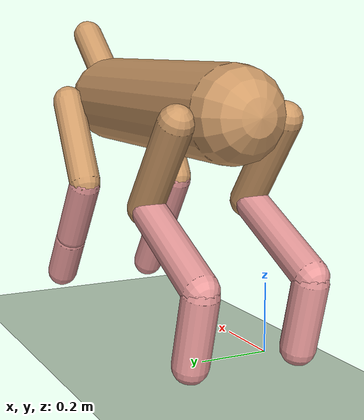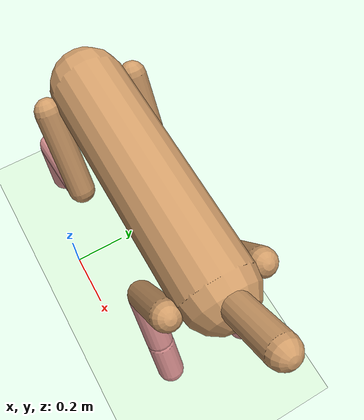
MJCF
<mujoco model="quadrupedrobot">
  <!-- coordinate="local" settotalmass="14" coordinate="local" -->
  <compiler angle="radian"  inertiafromgeom="true"  />
  <default>
    <joint limited='true' damping='1' armature='0'/>
    <geom contype='1' conaffinity='1' condim='1' rgba='0.8 0.6 .4 1'
          margin="0.001" solref=".02 1" solimp=".8 .8 .01" material="geom"/>
    <motor ctrllimited="true" ctrlrange="-1 1"/>
  </default>
  <size nstack="300000" nuser_geom="1"/>
  <option gravity="0 0 -9.81" timestep="0.01"
          tolerance="1e-10" solver="Newton" jacobian="dense" cone="elliptic"/>
  <visual>
      <map fogstart="3" fogend="5" force="0.1" znear="0.5"/>
      <quality shadowsize="2048" offsamples="8"/>
      <global offwidth="800" offheight="800"/>
  </visual>
  <asset>
    <texture builtin="gradient" height="100" rgb1="1 1 1" rgb2="0 0 0" type="skybox" width="100"/>
    <texture builtin="flat" height="1278" mark="cross" markrgb="1 1 1" name="texgeom" random="0.01"
              rgb1="0.8 0.6 0.4" rgb2="0.8 0.6 0.4" type="cube" width="127"/>
    <texture builtin="checker" height="100" name="texplane" rgb1=".2 .3 .4" rgb2=".1 0.15 0.2" type="2d" width="100"/>
    <material name="MatPlane" reflectance="0.5" shininess="1" specular="1" texrepeat="60 60" texture="texplane"/>
    <material name="geom" texture="texgeom" texuniform="true"/>
  </asset>
  <worldbody>
    <light cutoff="100" diffuse="1 1 1" dir="-0 0 -1.3" directional="true" exponent="1" pos="0 0 1.3" specular=".1 .1 .1"/>
    <geom conaffinity="1" condim="3" material="MatPlane" name="floor" pos="0 0 0" rgba="0.8 0.9 0.8 1" size="40 40 40" type="plane"/>
    <body name="torso" pos="0 0 .7">
      <camera name="track" mode="trackcom" pos="0 -5 2" xyaxes="1 0 0 0 0.25 1"/>
      <freejoint name="root"/>
      <geom fromto="-.25 .25 0 .5 .25 0" name="torso" size="0.125 " type="capsule"/>
      <geom axisangle="0 1 0 .87" name="head" pos=".6 .25 .1" size="0.046 .15" type="capsule"/>

      <body name="lbthigh" pos="-.25 .4 0">
        <joint name="lbthigh_y" type="hinge" axis="0 1 0" damping="6" pos="0 0 0" range="-.52 1.05" stiffness="240"  armature="0.02"  />
        <joint name="lbthigh_x" type="hinge" axis="1 0 0" damping="6" pos="0 0 0" range="-0.2 0.2" stiffness="240"  armature="0.02"  />
        <geom axisangle="0 1 0 -3.8" name="lbthigh" pos=".1 0 -.13" size="0.046 .145" type="capsule"/>
        <body name="lbshin" pos=".16 0 -.25">
          <joint  name="lbshin" type="hinge"  axis="0 1 0" damping="4.5" pos="0 0 0" range="-.785 .785" stiffness="180" armature="0.02"/>
          <geom axisangle="0 1 0 -2.03" name="lbshin" pos="-.14 0 -.07" rgba="0.9 0.6 0.6 1" size="0.046 .15" type="capsule"/>
          <body name="lbfoot" pos="-.28 0 -.14">
            <joint name="lbfoot" type="hinge" axis="0 1 0" damping="3" pos="0 0 0" range="-.4 .785" stiffness="120" armature="0.02"/>
            <geom axisangle="0 1 0 -.27" name="lbfoot" pos=".03 0 -.097" rgba="0.9 0.6 0.6 1" size="0.046 .094" type="capsule"/>
          </body>
        </body>
      </body>
      <body name="rbthigh" pos="-.25 .1 0">
        <joint name="rbthigh_y" type="hinge" axis="0 1 0" damping="6" pos="0 0 0" range="-.52 1.05" stiffness="240" armature="0.02"/>
        <joint name="rbthigh_x" type="hinge" axis="1 0 0" damping="6" pos="0 0 0" range="-0.2 0.2" stiffness="240"   armature="0.02"  />
        <geom axisangle="0 1 0 -3.8" name="rbthigh" pos=".1 0 -.13" size="0.046 .145" type="capsule"/>
        <body name="rbshin" pos=".16 0 -.25">
          <joint axis="0 1 0" damping="4.5" name="rbshin" pos="0 0 0" range="-.785 .785" stiffness="180" type="hinge"  armature="0.02"/>
          <geom axisangle="0 1 0 -2.03" name="rbshin" pos="-.14 0 -.07" rgba="0.9 0.6 0.6 1" size="0.046 .15" type="capsule"/>
          <body name="rbfoot" pos="-.28 0 -.14">
            <joint axis="0 1 0" damping="3" name="rbfoot" pos="0 0 0" range="-.4 .785" stiffness="120" type="hinge"  armature="0.02"/>
            <geom axisangle="0 1 0 -.27" name="rbfoot" pos=".03 0 -.097" rgba="0.9 0.6 0.6 1" size="0.046 .094" type="capsule"/>
          </body>
        </body>
      </body>
      <body name="lfthigh" pos=".5 .4 0">
          <joint name="lfthigh_y" type="hinge" axis="0 1 0" damping="4.5" pos="0 0 0" range="-1 .7" stiffness="180"  armature="0.02"/>
          <joint name="lfthigh_x" type="hinge" axis="1 0 0" damping="6" pos="0 0 0" range="-0.2 0.2" stiffness="240"   armature="0.02"  />

          <geom axisangle="0 1 0 .52" name="lfthigh" pos="-.07 0 -.12" size="0.046 .133" type="capsule"/>
          <body name="lfshin" pos="-.14 0 -.24">
              <joint type="hinge"  name="lfshin" axis="0 1 0" damping="3" pos="0 0 0" range="-1.2 .87" stiffness="120"  armature="0.02"/>
              <geom axisangle="0 1 0 -.6" name="lfshin" pos=".065 0 -.09" rgba="0.9 0.6 0.6 1" size="0.046 .106" type="capsule" />
              <body name="lffoot" pos=".13 0 -.18">
                  <joint type="hinge"  name="lffoot" axis="0 1 0" damping="1.5" pos="0 0 0" range="-.5 .5" stiffness="60"  armature="0.02"/>
                  <geom axisangle="0 1 0 -.6" name="lffoot" pos=".045 0 -.07" rgba="0.9 0.6 0.6 1" size="0.046 .07" type="capsule"/>
              </body>
          </body>
      </body>
      <body name="rfthigh" pos=".5 .1 0">
        <joint name="rfthigh_y" type="hinge" axis="0 1 0" damping="4.5" pos="0 0 0" range="-1 .7" stiffness="180"  armature="0.02"/>
        <joint name="rfthigh_x" type="hinge" axis="1 0 0" damping="6" pos="0 0 0" range="-0.2 0.2" stiffness="240"   armature="0.02"  />

        <geom axisangle="0 1 0 .52" name="fthigh" pos="-.07 0 -.12" size="0.046 .133" type="capsule"/>
        <body name="rfshin" pos="-.14 0 -.24">
          <joint name="rfshin" type="hinge" axis="0 1 0" damping="3"  pos="0 0 0" range="-1.2 .87" stiffness="120"  armature="0.02"/>
          <geom axisangle="0 1 0 -.6" name="rfshin" pos=".065 0 -.09" rgba="0.9 0.6 0.6 1" size="0.046 .106" type="capsule"/>
          <body name="rffoot" pos=".13 0 -.18">
            <joint name="rffoot" type="hinge" axis="0 1 0" damping="1.5"  pos="0 0 0" range="-.5 .5" stiffness="60" armature="0.02"/>
            <geom axisangle="0 1 0 -.6" name="rffoot" pos=".045 0 -.07" rgba="0.9 0.6 0.6 1" size="0.046 .07" type="capsule"/>
          </body>
        </body>
      </body>
    </body>
  </worldbody>
  <actuator>

    <motor gear="120" joint="lbthigh_y" name="lbthigh_y"/>
    <motor gear="120" joint="lbthigh_x" name="lbthigh_x"/>
    <motor gear="90" joint="lbshin" name="lbshin"/>
    <motor gear="60" joint="lbfoot" name="lbfoot"/>

    <motor gear="120" joint="rbthigh_y" name="rbthigh_y"/>
    <motor gear="120" joint="rbthigh_x" name="rbthigh_x"/>
    <motor gear="90" joint="rbshin" name="rbshin"/>
    <motor gear="60" joint="rbfoot" name="rbfoot"/>

    <motor gear="120" joint="lfthigh_y" name="lfthigh_y"/>
    <motor gear="120" joint="lfthigh_x" name="lfthigh_x"/>
    <motor gear="60" joint="lfshin" name="lfshin"/>
    <motor gear="30" joint="lffoot" name="lffoot"/>

    <motor gear="120" joint="rfthigh_y" name="rfthigh_y"/>
    <motor gear="120" joint="rfthigh_x" name="rfthigh_x"/>
    <motor gear="60" joint="rfshin" name="rfshin"/>
    <motor gear="30" joint="rffoot" name="rffoot"/>

  </actuator>
</mujoco>
